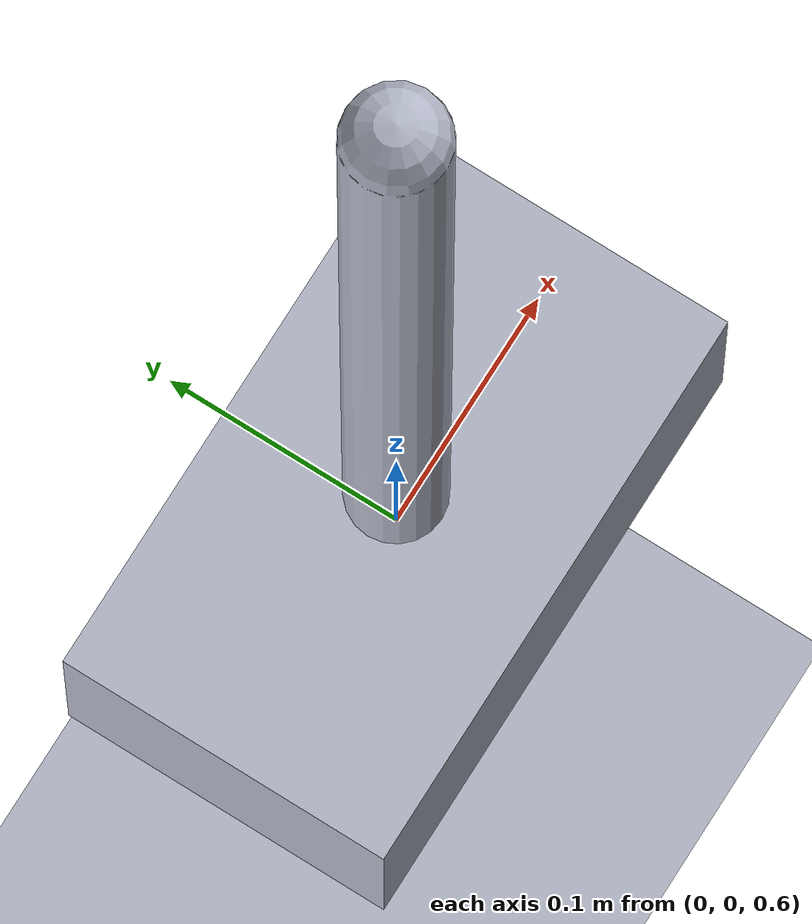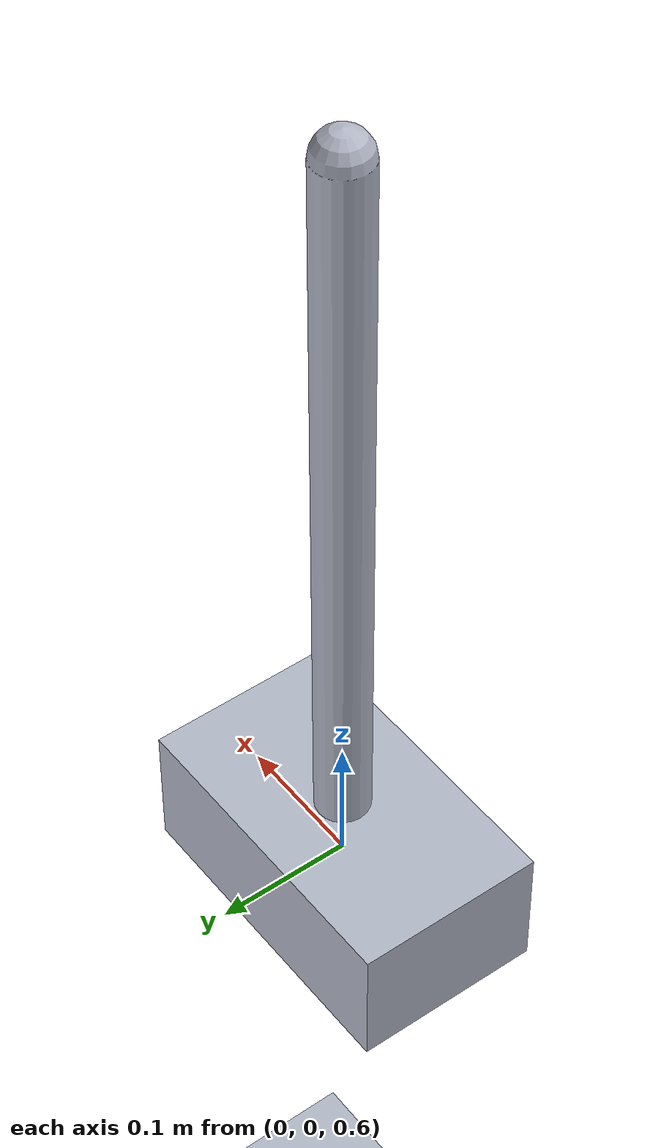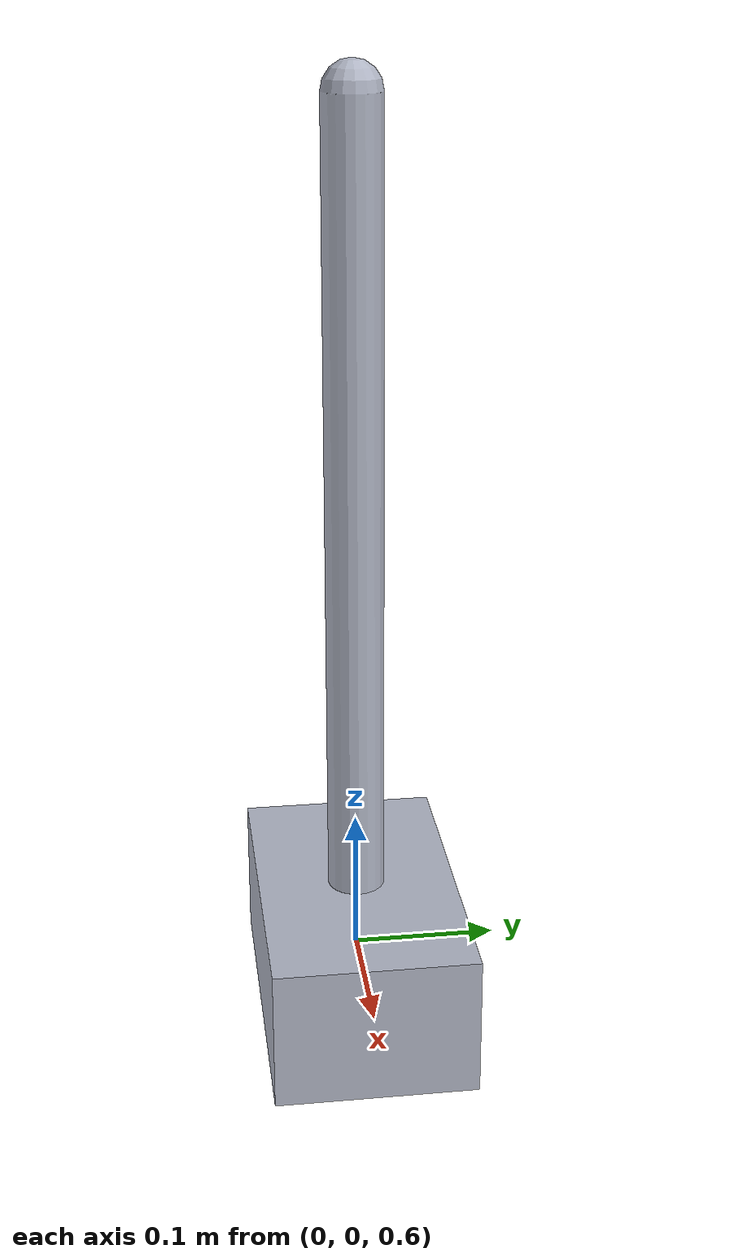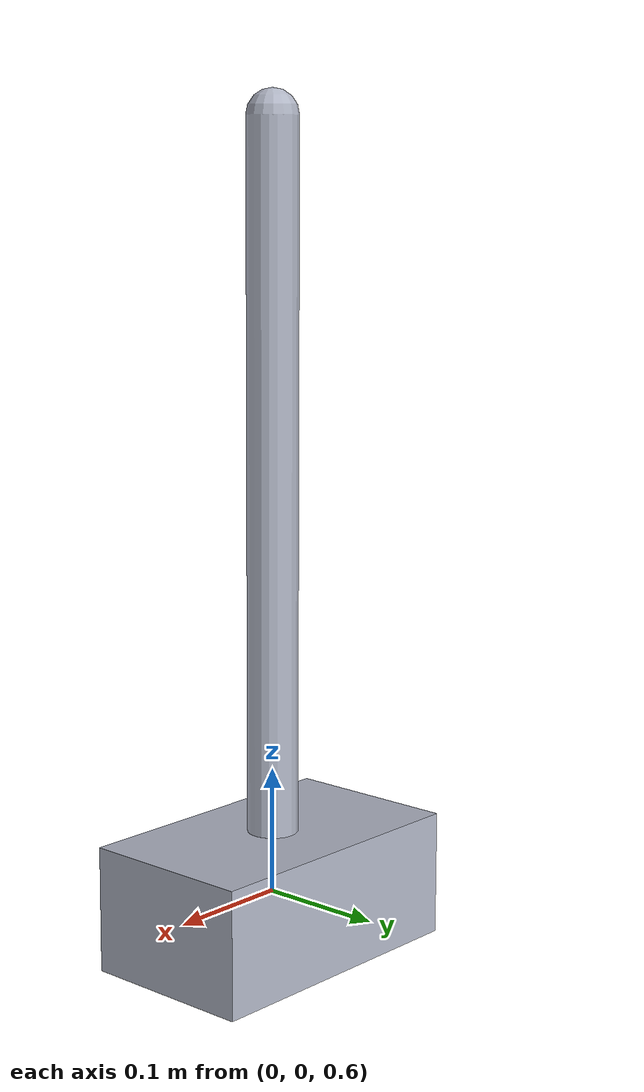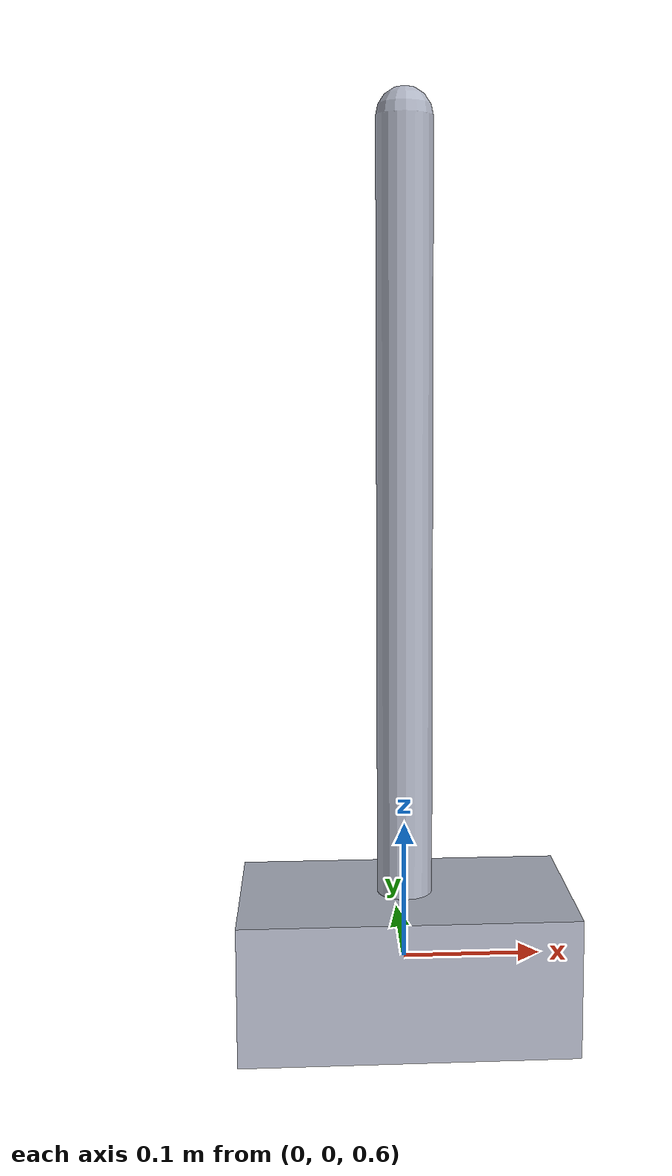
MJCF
<mujoco model="mjcf_pendulum">
  <option timestep="0.002" gravity="0 0 -9.81"/>
  <default>
    <geom rgba="0.7 0.72 0.78 1" density="1000"/>
    <joint damping="0.05" armature="0.01"/>
  </default>
  <worldbody>
    <geom name="floor" type="plane" size="10 10 0.1"/>
    <body name="cart" pos="0 0 0.6">
      <joint name="slide" type="slide" axis="1 0 0" range="-2 2"/>
      <geom name="cart_geom" type="box" size="0.12 0.07 0.05"/>
      <body name="pole" pos="0 0 0">
        <joint name="hinge" type="hinge" axis="0 1 0"/>
        <geom name="pole_geom" type="capsule" fromto="0 0 0 0 0 0.6" size="0.02"/>
      </body>
    </body>
  </worldbody>
  <actuator>
    <motor joint="slide" gear="40" ctrlrange="-1 1"/>
  </actuator>
</mujoco>
